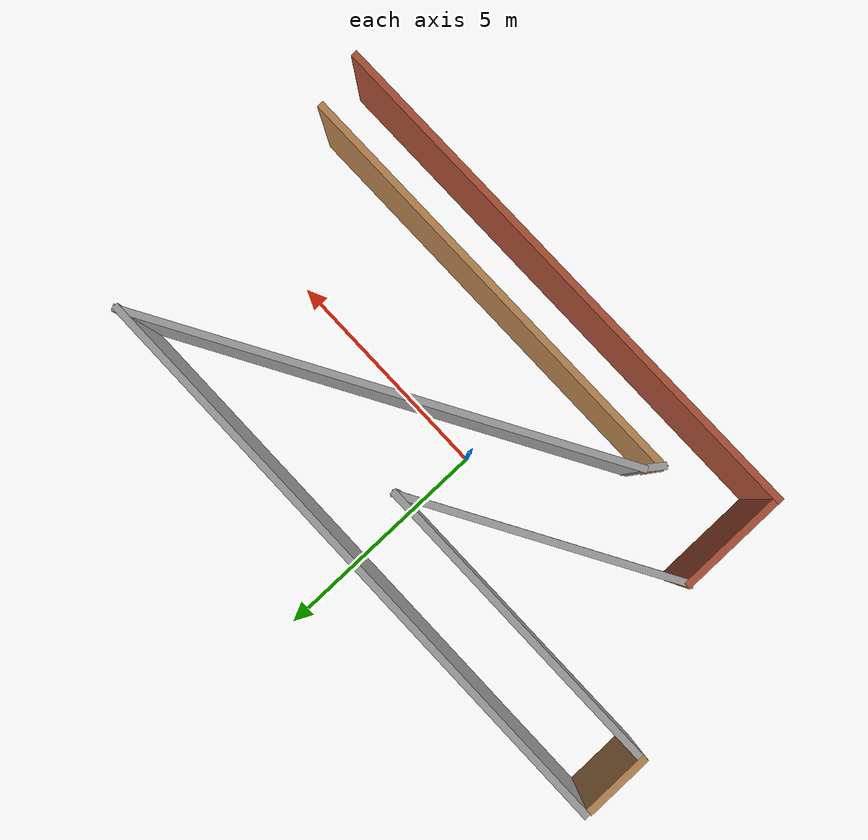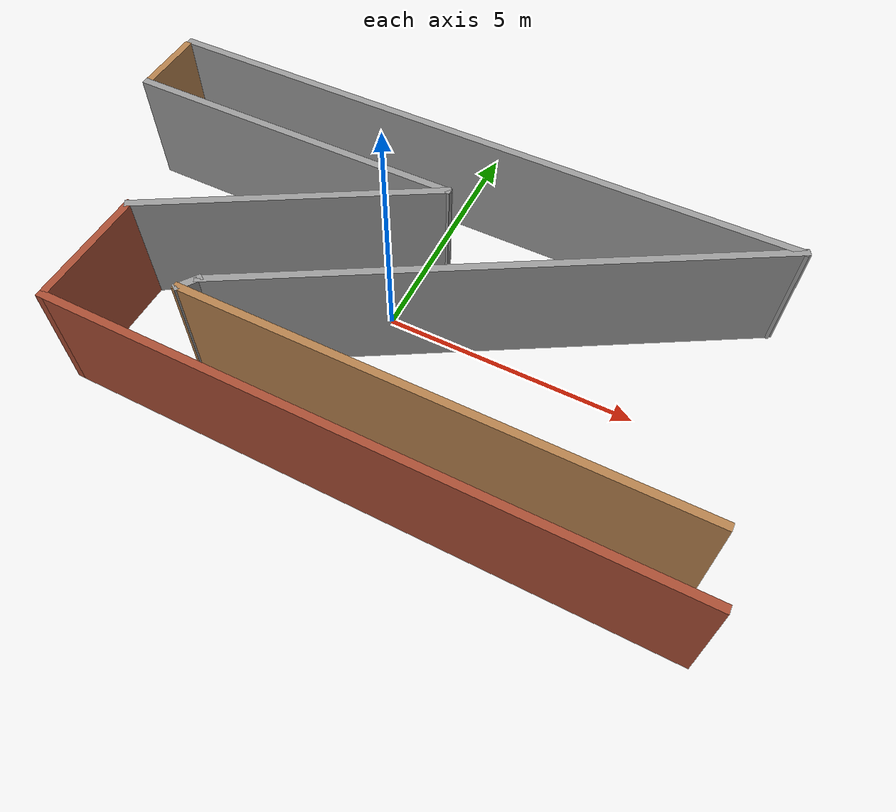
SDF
<sdf version="1.6">
 <world name="__default__">
  <gravity>0 0 -9.8</gravity>
  <magnetic_field>6e-06 2.3e-05 -4.2e-05</magnetic_field>
  <atmosphere type="adiabatic"/>
  <physics name="default_physics" default="0" type="ode">
   <max_step_size>0.001</max_step_size>
   <real_time_factor>1</real_time_factor>
   <real_time_update_rate>1000</real_time_update_rate>
  </physics>
  <scene><ambient>0.4 0.4 0.4 1</ambient><background>0.7 0.7 0.7 1</background><shadows>1</shadows></scene>
  <spherical_coordinates>
   <surface_model>EARTH_WGS84</surface_model>
   <latitude_deg>0</latitude_deg>
   <longitude_deg>0</longitude_deg>
   <elevation>0</elevation>
   <heading_deg>0</heading_deg>
  </spherical_coordinates>
  <model name="Z">
   <pose>0.386837 -0.33455 0 0 -0 0</pose>
   <link name="Wall_29">
    <collision name="Wall_29_Collision">
     <geometry><box><size>10.75 0.15 2.5</size></box></geometry>
     <pose>0 0 1.25 0 -0 0</pose>
    </collision>
    <visual name="Wall_29_Visual">
     <pose>0 0 1.25 0 -0 0</pose>
     <geometry><box><size>10.75 0.15 2.5</size></box></geometry>
     <material>
      <script><uri>file://media/materials/scripts/gazebo.material</uri><name>Gazebo/Grey</name></script>
      <ambient>1 1 1 1</ambient>
     </material>
    </visual>
    <pose>1.73324 0.721531 0 0 -0 0.523599</pose>
   </link>
   <link name="Wall_31">
    <collision name="Wall_31_Collision">
     <geometry><box><size>13.25 0.15 2.5</size></box></geometry>
     <pose>0 0 1.25 0 -0 0</pose>
    </collision>
    <visual name="Wall_31_Visual">
     <pose>0 0 1.25 0 -0 0</pose>
     <geometry><box><size>13.25 0.15 2.5</size></box></geometry>
     <material>
      <script><uri>file://media/materials/scripts/gazebo.material</uri><name>Gazebo/Grey</name></script>
      <ambient>1 1 1 1</ambient>
     </material>
    </visual>
    <pose>-0.238681 3.3571 0 0 -0 3.14159</pose>
   </link>
   <link name="Wall_34">
    <collision name="Wall_34_Collision">
     <geometry><box><size>9.75 0.15 2.5</size></box></geometry>
     <pose>0 0 1.25 0 -0 0</pose>
    </collision>
    <visual name="Wall_34_Visual">
     <pose>0 0 1.25 0 -0 0</pose>
     <geometry><box><size>9.75 0.15 2.5</size></box></geometry>
     <material>
      <script><uri>file://media/materials/scripts/gazebo.material</uri><name>Gazebo/Wood</name></script>
      <ambient>1 1 1 1</ambient>
     </material>
    </visual>
    <pose>1.72401 -2.22898 0 0 -0 3.14159</pose>
   </link>
   <link name="Wall_35">
    <collision name="Wall_35_Collision">
     <geometry><box><size>0.521928 0.15 2.5</size></box></geometry>
     <pose>0 0 1.25 0 -0 0</pose>
    </collision>
    <visual name="Wall_35_Visual">
     <pose>0 0 1.25 0 -0 0</pose>
     <geometry><box><size>0.521928 0.15 2.5</size></box></geometry>
     <material>
      <script><uri>file://media/materials/scripts/gazebo.material</uri><name>Gazebo/Grey</name></script>
      <ambient>1 1 1 1</ambient>
     </material>
    </visual>
    <pose>-2.96634 -2.07873 0 0 -0 0.940389</pose>
   </link>
   <link name="Wall_37">
    <collision name="Wall_37_Collision">
     <geometry><box><size>12 0.15 2.5</size></box></geometry>
     <pose>0 0 1.25 0 -0 0</pose>
    </collision>
    <visual name="Wall_37_Visual">
     <pose>0 0 1.25 0 -0 0</pose>
     <geometry><box><size>12 0.15 2.5</size></box></geometry>
     <material>
      <script><uri>file://media/materials/scripts/gazebo.material</uri><name>Gazebo/Bricks</name></script>
      <ambient>1 1 1 1</ambient>
     </material>
    </visual>
    <pose>0.892012 -3.39898 0 0 -0 3.14159</pose>
   </link>
   <link name="Wall_38">
    <collision name="Wall_38_Collision">
     <geometry><box><size>2.5 0.15 2.5</size></box></geometry>
     <pose>0 0 1.25 0 -0 0</pose>
    </collision>
    <visual name="Wall_38_Visual">
     <pose>0 0 1.25 0 -0 0</pose>
     <geometry><box><size>2.5 0.15 2.5</size></box></geometry>
     <material>
      <script><uri>file://media/materials/scripts/gazebo.material</uri><name>Gazebo/Bricks</name></script>
      <ambient>1 1 1 1</ambient>
     </material>
    </visual>
    <pose>-5.03299 -2.22398 0 0 -0 1.5708</pose>
   </link>
   <link name="Wall_39">
    <collision name="Wall_39_Collision">
     <geometry><box><size>6 0.15 2.5</size></box></geometry>
     <pose>0 0 1.25 0 -0 0</pose>
    </collision>
    <visual name="Wall_39_Visual">
     <pose>0 0 1.25 0 -0 0</pose>
     <geometry><box><size>6 0.15 2.5</size></box></geometry>
     <material>
      <script><uri>file://media/materials/scripts/gazebo.material</uri><name>Gazebo/Grey</name></script>
      <ambient>1 1 1 1</ambient>
     </material>
    </visual>
    <pose>-2.50001 0.41333 0 0 -0 0.523568</pose>
   </link>
   <link name="Wall_40">
    <collision name="Wall_40_Collision">
     <geometry><box><size>7 0.15 2.5</size></box></geometry>
     <pose>0 0 1.25 0 -0 0</pose>
    </collision>
    <visual name="Wall_40_Visual">
     <pose>0 0 1.25 0 -0 0</pose>
     <geometry><box><size>7 0.15 2.5</size></box></geometry>
     <material>
      <script><uri>file://media/materials/scripts/gazebo.material</uri><name>Gazebo/Grey</name></script>
      <ambient>1 1 1 1</ambient>
     </material>
    </visual>
    <pose>-3.39201 1.87583 0 0 -0 3.14154</pose>
   </link>
   <link name="Wall_41">
    <collision name="Wall_41_Collision">
     <geometry><box><size>1.5 0.15 2.5</size></box></geometry>
     <pose>0 0 1.25 0 -0 0</pose>
    </collision>
    <visual name="Wall_41_Visual">
     <pose>0 0 1.25 0 -0 0</pose>
     <geometry><box><size>1.5 0.15 2.5</size></box></geometry>
     <material>
      <script><uri>file://media/materials/scripts/gazebo.material</uri><name>Gazebo/Wood</name></script>
      <ambient>1 1 1 1</ambient>
     </material>
    </visual>
    <pose>-6.81699 2.55102 0 0 -0 1.5708</pose>
   </link>
   <static>1</static>
  </model>
 </world>
</sdf>
